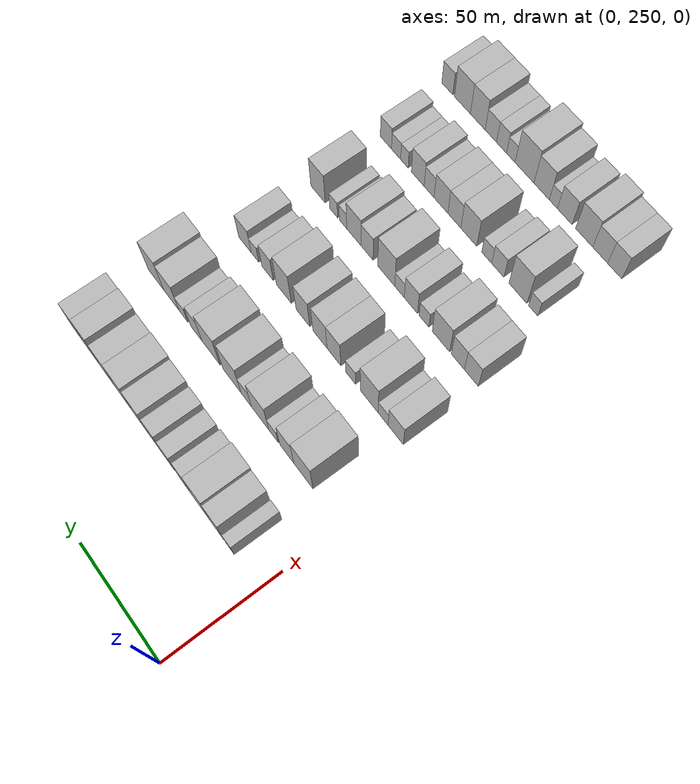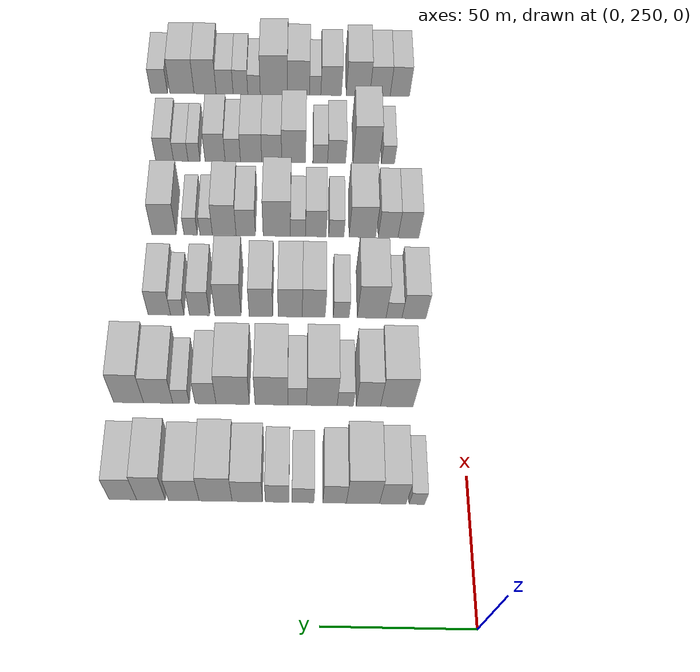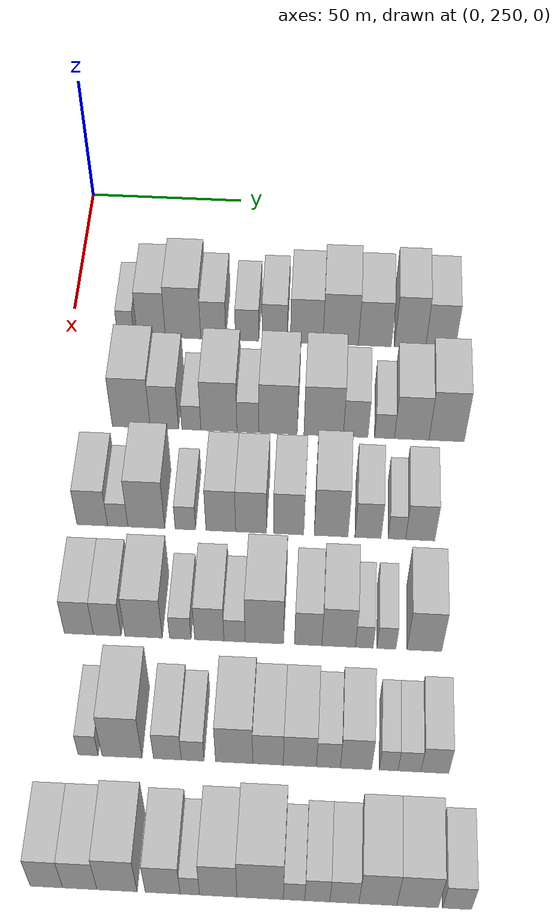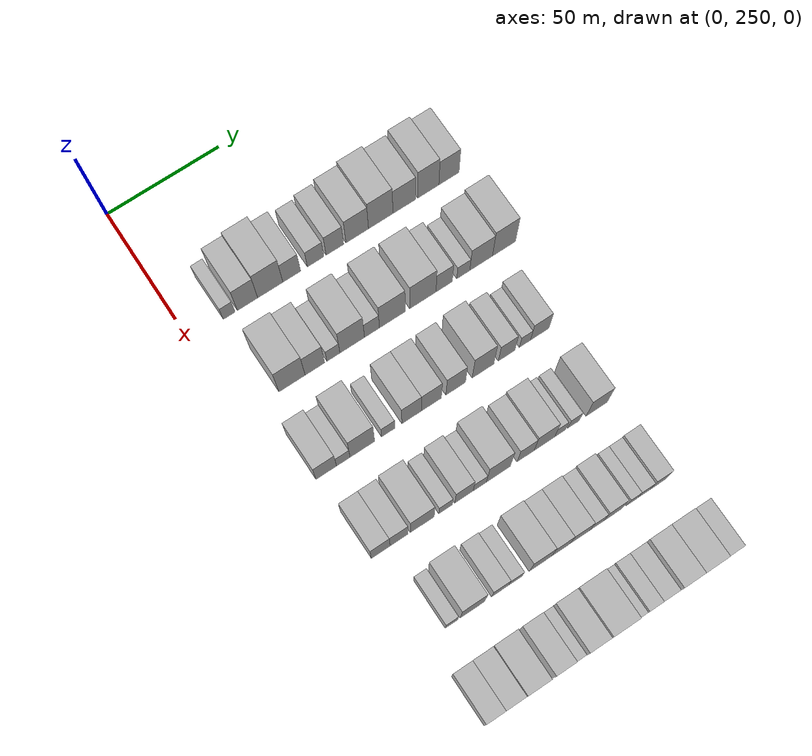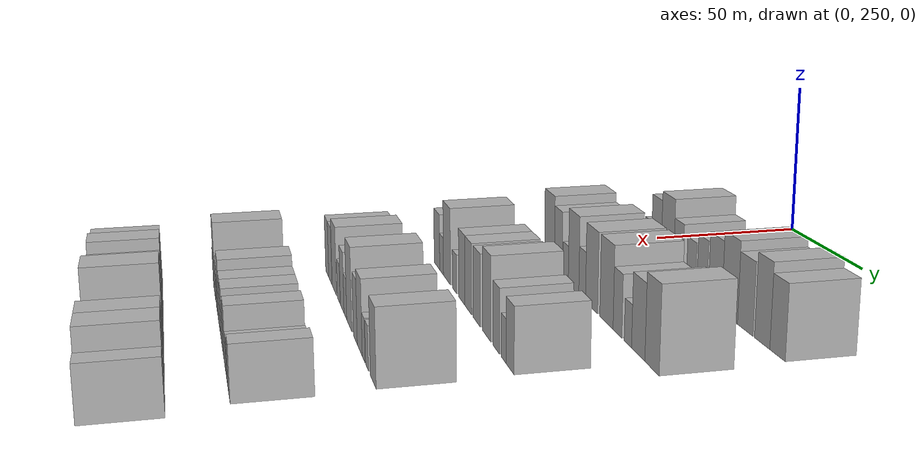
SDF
<sdf version="1.6">
 <world name="default">
  <model name="building_85">
   <static>1</static>
   <pose>50.0000 267.3651 0 0.000000 0.000000 0.000000</pose>
   <link name="link">
    <pose>0 0 6.00 0 0 0</pose>
    <collision name="collision"><geometry><box><size>20.0000 5.1874 12.0000</size></box></geometry></collision>
    <visual name="visual">
     <cast_shadows>0</cast_shadows>
     <geometry><box><size>20.0000 5.1874 12.0000</size></box></geometry>
     <material>
      <script>
       <uri>model://HANNAS_wall/materials/scripts</uri>
       <uri>model://HANNAS_wall/materials/textures</uri>
       <name>vrc/HANNAS_wall</name>
      </script>
     </material>
    </visual>
   </link>
  </model>
  <model name="building_86">
   <static>1</static>
   <pose>50.0000 275.4232 0 0.000000 0.000000 0.000000</pose>
   <link name="link">
    <pose>0 0 10.50 0 0 0</pose>
    <collision name="collision"><geometry><box><size>20.0000 8.9287 21.0000</size></box></geometry></collision>
    <visual name="visual">
     <cast_shadows>0</cast_shadows>
     <geometry><box><size>20.0000 8.9287 21.0000</size></box></geometry>
     <material>
      <script>
       <uri>model://HANNAS_wall/materials/scripts</uri>
       <uri>model://HANNAS_wall/materials/textures</uri>
       <name>vrc/HANNAS_wall</name>
      </script>
     </material>
    </visual>
   </link>
  </model>
  <model name="building_87">
   <static>1</static>
   <pose>50.0000 285.4402 0 0.000000 0.000000 0.000000</pose>
   <link name="link">
    <pose>0 0 12.00 0 0 0</pose>
    <collision name="collision"><geometry><box><size>20.0000 11.1054 24.0000</size></box></geometry></collision>
    <visual name="visual">
     <cast_shadows>0</cast_shadows>
     <geometry><box><size>20.0000 11.1054 24.0000</size></box></geometry>
     <material>
      <script>
       <uri>model://HANNAS_wall/materials/scripts</uri>
       <uri>model://HANNAS_wall/materials/textures</uri>
       <name>vrc/HANNAS_wall</name>
      </script>
     </material>
    </visual>
   </link>
  </model>
  <model name="building_88">
   <static>1</static>
   <pose>50.0000 294.9440 0 0.000000 0.000000 0.000000</pose>
   <link name="link">
    <pose>0 0 9.00 0 0 0</pose>
    <collision name="collision"><geometry><box><size>20.0000 7.9021 18.0000</size></box></geometry></collision>
    <visual name="visual">
     <cast_shadows>0</cast_shadows>
     <geometry><box><size>20.0000 7.9021 18.0000</size></box></geometry>
     <material>
      <script>
       <uri>model://HANNAS_wall/materials/scripts</uri>
       <uri>model://HANNAS_wall/materials/textures</uri>
       <name>vrc/HANNAS_wall</name>
      </script>
     </material>
    </visual>
   </link>
  </model>
  <model name="building_89">
   <static>1</static>
   <pose>50.0000 305.5742 0 0.000000 0.000000 0.000000</pose>
   <link name="link">
    <pose>0 0 7.50 0 0 0</pose>
    <collision name="collision"><geometry><box><size>20.0000 7.3584 15.0000</size></box></geometry></collision>
    <visual name="visual">
     <cast_shadows>0</cast_shadows>
     <geometry><box><size>20.0000 7.3584 15.0000</size></box></geometry>
     <material>
      <script>
       <uri>model://HANNAS_wall/materials/scripts</uri>
       <uri>model://HANNAS_wall/materials/textures</uri>
       <name>vrc/HANNAS_wall</name>
      </script>
     </material>
    </visual>
   </link>
  </model>
  <model name="building_90">
   <static>1</static>
   <pose>50.0000 314.1975 0 0.000000 0.000000 0.000000</pose>
   <link name="link">
    <pose>0 0 9.00 0 0 0</pose>
    <collision name="collision"><geometry><box><size>20.0000 7.8882 18.0000</size></box></geometry></collision>
    <visual name="visual">
     <cast_shadows>0</cast_shadows>
     <geometry><box><size>20.0000 7.8882 18.0000</size></box></geometry>
     <material>
      <script>
       <uri>model://HANNAS_wall/materials/scripts</uri>
       <uri>model://HANNAS_wall/materials/textures</uri>
       <name>vrc/HANNAS_wall</name>
      </script>
     </material>
    </visual>
   </link>
  </model>
  <model name="building_91">
   <static>1</static>
   <pose>50.0000 324.2338 0 0.000000 0.000000 0.000000</pose>
   <link name="link">
    <pose>0 0 10.50 0 0 0</pose>
    <collision name="collision"><geometry><box><size>20.0000 10.1844 21.0000</size></box></geometry></collision>
    <visual name="visual">
     <cast_shadows>0</cast_shadows>
     <geometry><box><size>20.0000 10.1844 21.0000</size></box></geometry>
     <material>
      <script>
       <uri>model://HANNAS_wall/materials/scripts</uri>
       <uri>model://HANNAS_wall/materials/textures</uri>
       <name>vrc/HANNAS_wall</name>
      </script>
     </material>
    </visual>
   </link>
  </model>
  <model name="building_92">
   <static>1</static>
   <pose>50.0000 334.8669 0 0.000000 0.000000 0.000000</pose>
   <link name="link">
    <pose>0 0 12.00 0 0 0</pose>
    <collision name="collision"><geometry><box><size>20.0000 11.0817 24.0000</size></box></geometry></collision>
    <visual name="visual">
     <cast_shadows>0</cast_shadows>
     <geometry><box><size>20.0000 11.0817 24.0000</size></box></geometry>
     <material>
      <script>
       <uri>model://HANNAS_wall/materials/scripts</uri>
       <uri>model://HANNAS_wall/materials/textures</uri>
       <name>vrc/HANNAS_wall</name>
      </script>
     </material>
    </visual>
   </link>
  </model>
  <model name="building_93">
   <static>1</static>
   <pose>50.0000 345.5616 0 0.000000 0.000000 0.000000</pose>
   <link name="link">
    <pose>0 0 10.50 0 0 0</pose>
    <collision name="collision"><geometry><box><size>20.0000 10.3077 21.0000</size></box></geometry></collision>
    <visual name="visual">
     <cast_shadows>0</cast_shadows>
     <geometry><box><size>20.0000 10.3077 21.0000</size></box></geometry>
     <material>
      <script>
       <uri>model://HANNAS_wall/materials/scripts</uri>
       <uri>model://HANNAS_wall/materials/textures</uri>
       <name>vrc/HANNAS_wall</name>
      </script>
     </material>
    </visual>
   </link>
  </model>
  <model name="building_94">
   <static>1</static>
   <pose>50.0000 356.5582 0 0.000000 0.000000 0.000000</pose>
   <link name="link">
    <pose>0 0 12.00 0 0 0</pose>
    <collision name="collision"><geometry><box><size>20.0000 9.6854 24.0000</size></box></geometry></collision>
    <visual name="visual">
     <cast_shadows>0</cast_shadows>
     <geometry><box><size>20.0000 9.6854 24.0000</size></box></geometry>
     <material>
      <script>
       <uri>model://HANNAS_wall/materials/scripts</uri>
       <uri>model://HANNAS_wall/materials/textures</uri>
       <name>vrc/HANNAS_wall</name>
      </script>
     </material>
    </visual>
   </link>
  </model>
  <model name="building_95">
   <static>1</static>
   <pose>50.0000 366.0386 0 0.000000 0.000000 0.000000</pose>
   <link name="link">
    <pose>0 0 10.50 0 0 0</pose>
    <collision name="collision"><geometry><box><size>20.0000 9.2755 21.0000</size></box></geometry></collision>
    <visual name="visual">
     <cast_shadows>0</cast_shadows>
     <geometry><box><size>20.0000 9.2755 21.0000</size></box></geometry>
     <material>
      <script>
       <uri>model://HANNAS_wall/materials/scripts</uri>
       <uri>model://HANNAS_wall/materials/textures</uri>
       <name>vrc/HANNAS_wall</name>
      </script>
     </material>
    </visual>
   </link>
  </model>
  <model name="building_214">
   <static>1</static>
   <pose>85.0000 272.7797 0 0.000000 0.000000 0.000000</pose>
   <link name="link">
    <pose>0 0 12.00 0 0 0</pose>
    <collision name="collision"><geometry><box><size>20.0000 11.4263 24.0000</size></box></geometry></collision>
    <visual name="visual">
     <cast_shadows>0</cast_shadows>
     <geometry><box><size>20.0000 11.4263 24.0000</size></box></geometry>
     <material>
      <script>
       <uri>model://HANNAS_wall/materials/scripts</uri>
       <uri>model://HANNAS_wall/materials/textures</uri>
       <name>vrc/HANNAS_wall</name>
      </script>
     </material>
    </visual>
   </link>
  </model>
  <model name="building_215">
   <static>1</static>
   <pose>85.0000 282.7655 0 0.000000 0.000000 0.000000</pose>
   <link name="link">
    <pose>0 0 10.50 0 0 0</pose>
    <collision name="collision"><geometry><box><size>20.0000 8.5454 21.0000</size></box></geometry></collision>
    <visual name="visual">
     <cast_shadows>0</cast_shadows>
     <geometry><box><size>20.0000 8.5454 21.0000</size></box></geometry>
     <material>
      <script>
       <uri>model://HANNAS_wall/materials/scripts</uri>
       <uri>model://HANNAS_wall/materials/textures</uri>
       <name>vrc/HANNAS_wall</name>
      </script>
     </material>
    </visual>
   </link>
  </model>
  <model name="building_216">
   <static>1</static>
   <pose>85.0000 290.9057 0 0.000000 0.000000 0.000000</pose>
   <link name="link">
    <pose>0 0 6.00 0 0 0</pose>
    <collision name="collision"><geometry><box><size>20.0000 5.7350 12.0000</size></box></geometry></collision>
    <visual name="visual">
     <cast_shadows>0</cast_shadows>
     <geometry><box><size>20.0000 5.7350 12.0000</size></box></geometry>
     <material>
      <script>
       <uri>model://HANNAS_wall/materials/scripts</uri>
       <uri>model://HANNAS_wall/materials/textures</uri>
       <name>vrc/HANNAS_wall</name>
      </script>
     </material>
    </visual>
   </link>
  </model>
  <model name="building_217">
   <static>1</static>
   <pose>85.0000 299.1923 0 0.000000 0.000000 0.000000</pose>
   <link name="link">
    <pose>0 0 12.00 0 0 0</pose>
    <collision name="collision"><geometry><box><size>20.0000 10.8382 24.0000</size></box></geometry></collision>
    <visual name="visual">
     <cast_shadows>0</cast_shadows>
     <geometry><box><size>20.0000 10.8382 24.0000</size></box></geometry>
     <material>
      <script>
       <uri>model://HANNAS_wall/materials/scripts</uri>
       <uri>model://HANNAS_wall/materials/textures</uri>
       <name>vrc/HANNAS_wall</name>
      </script>
     </material>
    </visual>
   </link>
  </model>
  <model name="building_218">
   <static>1</static>
   <pose>85.0000 307.9244 0 0.000000 0.000000 0.000000</pose>
   <link name="link">
    <pose>0 0 7.50 0 0 0</pose>
    <collision name="collision"><geometry><box><size>20.0000 6.6259 15.0000</size></box></geometry></collision>
    <visual name="visual">
     <cast_shadows>0</cast_shadows>
     <geometry><box><size>20.0000 6.6259 15.0000</size></box></geometry>
     <material>
      <script>
       <uri>model://HANNAS_wall/materials/scripts</uri>
       <uri>model://HANNAS_wall/materials/textures</uri>
       <name>vrc/HANNAS_wall</name>
      </script>
     </material>
    </visual>
   </link>
  </model>
  <model name="building_219">
   <static>1</static>
   <pose>85.0000 316.9781 0 0.000000 0.000000 0.000000</pose>
   <link name="link">
    <pose>0 0 12.00 0 0 0</pose>
    <collision name="collision"><geometry><box><size>20.0000 11.4815 24.0000</size></box></geometry></collision>
    <visual name="visual">
     <cast_shadows>0</cast_shadows>
     <geometry><box><size>20.0000 11.4815 24.0000</size></box></geometry>
     <material>
      <script>
       <uri>model://HANNAS_wall/materials/scripts</uri>
       <uri>model://HANNAS_wall/materials/textures</uri>
       <name>vrc/HANNAS_wall</name>
      </script>
     </material>
    </visual>
   </link>
  </model>
  <model name="building_220">
   <static>1</static>
   <pose>85.0000 330.6158 0 0.000000 0.000000 0.000000</pose>
   <link name="link">
    <pose>0 0 12.00 0 0 0</pose>
    <collision name="collision"><geometry><box><size>20.0000 11.7939 24.0000</size></box></geometry></collision>
    <visual name="visual">
     <cast_shadows>0</cast_shadows>
     <geometry><box><size>20.0000 11.7939 24.0000</size></box></geometry>
     <material>
      <script>
       <uri>model://HANNAS_wall/materials/scripts</uri>
       <uri>model://HANNAS_wall/materials/textures</uri>
       <name>vrc/HANNAS_wall</name>
      </script>
     </material>
    </visual>
   </link>
  </model>
  <model name="building_221">
   <static>1</static>
   <pose>85.0000 340.2040 0 0.000000 0.000000 0.000000</pose>
   <link name="link">
    <pose>0 0 9.00 0 0 0</pose>
    <collision name="collision"><geometry><box><size>20.0000 7.3823 18.0000</size></box></geometry></collision>
    <visual name="visual">
     <cast_shadows>0</cast_shadows>
     <geometry><box><size>20.0000 7.3823 18.0000</size></box></geometry>
     <material>
      <script>
       <uri>model://HANNAS_wall/materials/scripts</uri>
       <uri>model://HANNAS_wall/materials/textures</uri>
       <name>vrc/HANNAS_wall</name>
      </script>
     </material>
    </visual>
   </link>
  </model>
  <model name="building_222">
   <static>1</static>
   <pose>85.0000 348.8514 0 0.000000 0.000000 0.000000</pose>
   <link name="link">
    <pose>0 0 6.00 0 0 0</pose>
    <collision name="collision"><geometry><box><size>20.0000 5.9125 12.0000</size></box></geometry></collision>
    <visual name="visual">
     <cast_shadows>0</cast_shadows>
     <geometry><box><size>20.0000 5.9125 12.0000</size></box></geometry>
     <material>
      <script>
       <uri>model://HANNAS_wall/materials/scripts</uri>
       <uri>model://HANNAS_wall/materials/textures</uri>
       <name>vrc/HANNAS_wall</name>
      </script>
     </material>
    </visual>
   </link>
  </model>
  <model name="building_223">
   <static>1</static>
   <pose>85.0000 356.9753 0 0.000000 0.000000 0.000000</pose>
   <link name="link">
    <pose>0 0 10.50 0 0 0</pose>
    <collision name="collision"><geometry><box><size>20.0000 10.3353 21.0000</size></box></geometry></collision>
    <visual name="visual">
     <cast_shadows>0</cast_shadows>
     <geometry><box><size>20.0000 10.3353 21.0000</size></box></geometry>
     <material>
      <script>
       <uri>model://HANNAS_wall/materials/scripts</uri>
       <uri>model://HANNAS_wall/materials/textures</uri>
       <name>vrc/HANNAS_wall</name>
      </script>
     </material>
    </visual>
   </link>
  </model>
  <model name="building_224">
   <static>1</static>
   <pose>85.0000 367.4034 0 0.000000 0.000000 0.000000</pose>
   <link name="link">
    <pose>0 0 12.00 0 0 0</pose>
    <collision name="collision"><geometry><box><size>20.0000 10.5210 24.0000</size></box></geometry></collision>
    <visual name="visual">
     <cast_shadows>0</cast_shadows>
     <geometry><box><size>20.0000 10.5210 24.0000</size></box></geometry>
     <material>
      <script>
       <uri>model://HANNAS_wall/materials/scripts</uri>
       <uri>model://HANNAS_wall/materials/textures</uri>
       <name>vrc/HANNAS_wall</name>
      </script>
     </material>
    </visual>
   </link>
  </model>
  <model name="building_344">
   <static>1</static>
   <pose>120.0000 265.1553 0 0.000000 0.000000 0.000000</pose>
   <link name="link">
    <pose>0 0 9.00 0 0 0</pose>
    <collision name="collision"><geometry><box><size>20.0000 8.8546 18.0000</size></box></geometry></collision>
    <visual name="visual">
     <cast_shadows>0</cast_shadows>
     <geometry><box><size>20.0000 8.8546 18.0000</size></box></geometry>
     <material>
      <script>
       <uri>model://HANNAS_wall/materials/scripts</uri>
       <uri>model://HANNAS_wall/materials/textures</uri>
       <name>vrc/HANNAS_wall</name>
      </script>
     </material>
    </visual>
   </link>
  </model>
  <model name="building_345">
   <static>1</static>
   <pose>120.0000 272.5196 0 0.000000 0.000000 0.000000</pose>
   <link name="link">
    <pose>0 0 6.00 0 0 0</pose>
    <collision name="collision"><geometry><box><size>20.0000 5.8739 12.0000</size></box></geometry></collision>
    <visual name="visual">
     <cast_shadows>0</cast_shadows>
     <geometry><box><size>20.0000 5.8739 12.0000</size></box></geometry>
     <material>
      <script>
       <uri>model://HANNAS_wall/materials/scripts</uri>
       <uri>model://HANNAS_wall/materials/textures</uri>
       <name>vrc/HANNAS_wall</name>
      </script>
     </material>
    </visual>
   </link>
  </model>
  <model name="building_346">
   <static>1</static>
   <pose>120.0000 280.7704 0 0.000000 0.000000 0.000000</pose>
   <link name="link">
    <pose>0 0 12.00 0 0 0</pose>
    <collision name="collision"><geometry><box><size>20.0000 10.6278 24.0000</size></box></geometry></collision>
    <visual name="visual">
     <cast_shadows>0</cast_shadows>
     <geometry><box><size>20.0000 10.6278 24.0000</size></box></geometry>
     <material>
      <script>
       <uri>model://HANNAS_wall/materials/scripts</uri>
       <uri>model://HANNAS_wall/materials/textures</uri>
       <name>vrc/HANNAS_wall</name>
      </script>
     </material>
    </visual>
   </link>
  </model>
  <model name="building_347">
   <static>1</static>
   <pose>120.0000 292.0162 0 0.000000 0.000000 0.000000</pose>
   <link name="link">
    <pose>0 0 6.00 0 0 0</pose>
    <collision name="collision"><geometry><box><size>20.0000 5.8637 12.0000</size></box></geometry></collision>
    <visual name="visual">
     <cast_shadows>0</cast_shadows>
     <geometry><box><size>20.0000 5.8637 12.0000</size></box></geometry>
     <material>
      <script>
       <uri>model://HANNAS_wall/materials/scripts</uri>
       <uri>model://HANNAS_wall/materials/textures</uri>
       <name>vrc/HANNAS_wall</name>
      </script>
     </material>
    </visual>
   </link>
  </model>
  <model name="building_348">
   <static>1</static>
   <pose>120.0000 302.2146 0 0.000000 0.000000 0.000000</pose>
   <link name="link">
    <pose>0 0 10.50 0 0 0</pose>
    <collision name="collision"><geometry><box><size>20.0000 8.5331 21.0000</size></box></geometry></collision>
    <visual name="visual">
     <cast_shadows>0</cast_shadows>
     <geometry><box><size>20.0000 8.5331 21.0000</size></box></geometry>
     <material>
      <script>
       <uri>model://HANNAS_wall/materials/scripts</uri>
       <uri>model://HANNAS_wall/materials/textures</uri>
       <name>vrc/HANNAS_wall</name>
      </script>
     </material>
    </visual>
   </link>
  </model>
  <model name="building_349">
   <static>1</static>
   <pose>120.0000 310.8979 0 0.000000 0.000000 0.000000</pose>
   <link name="link">
    <pose>0 0 10.50 0 0 0</pose>
    <collision name="collision"><geometry><box><size>20.0000 8.8336 21.0000</size></box></geometry></collision>
    <visual name="visual">
     <cast_shadows>0</cast_shadows>
     <geometry><box><size>20.0000 8.8336 21.0000</size></box></geometry>
     <material>
      <script>
       <uri>model://HANNAS_wall/materials/scripts</uri>
       <uri>model://HANNAS_wall/materials/textures</uri>
       <name>vrc/HANNAS_wall</name>
      </script>
     </material>
    </visual>
   </link>
  </model>
  <model name="building_350">
   <static>1</static>
   <pose>120.0000 321.6597 0 0.000000 0.000000 0.000000</pose>
   <link name="link">
    <pose>0 0 10.50 0 0 0</pose>
    <collision name="collision"><geometry><box><size>20.0000 8.6899 21.0000</size></box></geometry></collision>
    <visual name="visual">
     <cast_shadows>0</cast_shadows>
     <geometry><box><size>20.0000 8.6899 21.0000</size></box></geometry>
     <material>
      <script>
       <uri>model://HANNAS_wall/materials/scripts</uri>
       <uri>model://HANNAS_wall/materials/textures</uri>
       <name>vrc/HANNAS_wall</name>
      </script>
     </material>
    </visual>
   </link>
  </model>
  <model name="building_351">
   <static>1</static>
   <pose>120.0000 333.8336 0 0.000000 0.000000 0.000000</pose>
   <link name="link">
    <pose>0 0 12.00 0 0 0</pose>
    <collision name="collision"><geometry><box><size>20.0000 9.6581 24.0000</size></box></geometry></collision>
    <visual name="visual">
     <cast_shadows>0</cast_shadows>
     <geometry><box><size>20.0000 9.6581 24.0000</size></box></geometry>
     <material>
      <script>
       <uri>model://HANNAS_wall/materials/scripts</uri>
       <uri>model://HANNAS_wall/materials/textures</uri>
       <name>vrc/HANNAS_wall</name>
      </script>
     </material>
    </visual>
   </link>
  </model>
  <model name="building_352">
   <static>1</static>
   <pose>120.0000 344.3937 0 0.000000 0.000000 0.000000</pose>
   <link name="link">
    <pose>0 0 9.00 0 0 0</pose>
    <collision name="collision"><geometry><box><size>20.0000 7.4620 18.0000</size></box></geometry></collision>
    <visual name="visual">
     <cast_shadows>0</cast_shadows>
     <geometry><box><size>20.0000 7.4620 18.0000</size></box></geometry>
     <material>
      <script>
       <uri>model://HANNAS_wall/materials/scripts</uri>
       <uri>model://HANNAS_wall/materials/textures</uri>
       <name>vrc/HANNAS_wall</name>
      </script>
     </material>
    </visual>
   </link>
  </model>
  <model name="building_353">
   <static>1</static>
   <pose>120.0000 352.6313 0 0.000000 0.000000 0.000000</pose>
   <link name="link">
    <pose>0 0 6.00 0 0 0</pose>
    <collision name="collision"><geometry><box><size>20.0000 5.0134 12.0000</size></box></geometry></collision>
    <visual name="visual">
     <cast_shadows>0</cast_shadows>
     <geometry><box><size>20.0000 5.0134 12.0000</size></box></geometry>
     <material>
      <script>
       <uri>model://HANNAS_wall/materials/scripts</uri>
       <uri>model://HANNAS_wall/materials/textures</uri>
       <name>vrc/HANNAS_wall</name>
      </script>
     </material>
    </visual>
   </link>
  </model>
  <model name="building_354">
   <static>1</static>
   <pose>120.0000 359.2974 0 0.000000 0.000000 0.000000</pose>
   <link name="link">
    <pose>0 0 9.00 0 0 0</pose>
    <collision name="collision"><geometry><box><size>20.0000 8.3188 18.0000</size></box></geometry></collision>
    <visual name="visual">
     <cast_shadows>0</cast_shadows>
     <geometry><box><size>20.0000 8.3188 18.0000</size></box></geometry>
     <material>
      <script>
       <uri>model://HANNAS_wall/materials/scripts</uri>
       <uri>model://HANNAS_wall/materials/textures</uri>
       <name>vrc/HANNAS_wall</name>
      </script>
     </material>
    </visual>
   </link>
  </model>
  <model name="building_475">
   <static>1</static>
   <pose>155.0000 265.6820 0 0.000000 0.000000 0.000000</pose>
   <link name="link">
    <pose>0 0 9.00 0 0 0</pose>
    <collision name="collision"><geometry><box><size>20.0000 8.0343 18.0000</size></box></geometry></collision>
    <visual name="visual">
     <cast_shadows>0</cast_shadows>
     <geometry><box><size>20.0000 8.0343 18.0000</size></box></geometry>
     <material>
      <script>
       <uri>model://HANNAS_wall/materials/scripts</uri>
       <uri>model://HANNAS_wall/materials/textures</uri>
       <name>vrc/HANNAS_wall</name>
      </script>
     </material>
    </visual>
   </link>
  </model>
  <model name="building_476">
   <static>1</static>
   <pose>155.0000 273.5184 0 0.000000 0.000000 0.000000</pose>
   <link name="link">
    <pose>0 0 9.00 0 0 0</pose>
    <collision name="collision"><geometry><box><size>20.0000 7.6386 18.0000</size></box></geometry></collision>
    <visual name="visual">
     <cast_shadows>0</cast_shadows>
     <geometry><box><size>20.0000 7.6386 18.0000</size></box></geometry>
     <material>
      <script>
       <uri>model://HANNAS_wall/materials/scripts</uri>
       <uri>model://HANNAS_wall/materials/textures</uri>
       <name>vrc/HANNAS_wall</name>
      </script>
     </material>
    </visual>
   </link>
  </model>
  <model name="building_477">
   <static>1</static>
   <pose>155.0000 283.4774 0 0.000000 0.000000 0.000000</pose>
   <link name="link">
    <pose>0 0 10.50 0 0 0</pose>
    <collision name="collision"><geometry><box><size>20.0000 10.2794 21.0000</size></box></geometry></collision>
    <visual name="visual">
     <cast_shadows>0</cast_shadows>
     <geometry><box><size>20.0000 10.2794 21.0000</size></box></geometry>
     <material>
      <script>
       <uri>model://HANNAS_wall/materials/scripts</uri>
       <uri>model://HANNAS_wall/materials/textures</uri>
       <name>vrc/HANNAS_wall</name>
      </script>
     </material>
    </visual>
   </link>
  </model>
  <model name="building_478">
   <static>1</static>
   <pose>155.0000 293.5607 0 0.000000 0.000000 0.000000</pose>
   <link name="link">
    <pose>0 0 6.00 0 0 0</pose>
    <collision name="collision"><geometry><box><size>20.0000 5.8872 12.0000</size></box></geometry></collision>
    <visual name="visual">
     <cast_shadows>0</cast_shadows>
     <geometry><box><size>20.0000 5.8872 12.0000</size></box></geometry>
     <material>
      <script>
       <uri>model://HANNAS_wall/materials/scripts</uri>
       <uri>model://HANNAS_wall/materials/textures</uri>
       <name>vrc/HANNAS_wall</name>
      </script>
     </material>
    </visual>
   </link>
  </model>
  <model name="building_479">
   <static>1</static>
   <pose>155.0000 301.5059 0 0.000000 0.000000 0.000000</pose>
   <link name="link">
    <pose>0 0 9.00 0 0 0</pose>
    <collision name="collision"><geometry><box><size>20.0000 8.0030 18.0000</size></box></geometry></collision>
    <visual name="visual">
     <cast_shadows>0</cast_shadows>
     <geometry><box><size>20.0000 8.0030 18.0000</size></box></geometry>
     <material>
      <script>
       <uri>model://HANNAS_wall/materials/scripts</uri>
       <uri>model://HANNAS_wall/materials/textures</uri>
       <name>vrc/HANNAS_wall</name>
      </script>
     </material>
    </visual>
   </link>
  </model>
  <model name="building_480">
   <static>1</static>
   <pose>155.0000 308.4057 0 0.000000 0.000000 0.000000</pose>
   <link name="link">
    <pose>0 0 6.00 0 0 0</pose>
    <collision name="collision"><geometry><box><size>20.0000 5.7966 12.0000</size></box></geometry></collision>
    <visual name="visual">
     <cast_shadows>0</cast_shadows>
     <geometry><box><size>20.0000 5.7966 12.0000</size></box></geometry>
     <material>
      <script>
       <uri>model://HANNAS_wall/materials/scripts</uri>
       <uri>model://HANNAS_wall/materials/textures</uri>
       <name>vrc/HANNAS_wall</name>
      </script>
     </material>
    </visual>
   </link>
  </model>
  <model name="building_481">
   <static>1</static>
   <pose>155.0000 316.5645 0 0.000000 0.000000 0.000000</pose>
   <link name="link">
    <pose>0 0 12.00 0 0 0</pose>
    <collision name="collision"><geometry><box><size>20.0000 10.5208 24.0000</size></box></geometry></collision>
    <visual name="visual">
     <cast_shadows>0</cast_shadows>
     <geometry><box><size>20.0000 10.5208 24.0000</size></box></geometry>
     <material>
      <script>
       <uri>model://HANNAS_wall/materials/scripts</uri>
       <uri>model://HANNAS_wall/materials/textures</uri>
       <name>vrc/HANNAS_wall</name>
      </script>
     </material>
    </visual>
   </link>
  </model>
  <model name="building_482">
   <static>1</static>
   <pose>155.0000 328.5617 0 0.000000 0.000000 0.000000</pose>
   <link name="link">
    <pose>0 0 9.00 0 0 0</pose>
    <collision name="collision"><geometry><box><size>20.0000 7.4736 18.0000</size></box></geometry></collision>
    <visual name="visual">
     <cast_shadows>0</cast_shadows>
     <geometry><box><size>20.0000 7.4736 18.0000</size></box></geometry>
     <material>
      <script>
       <uri>model://HANNAS_wall/materials/scripts</uri>
       <uri>model://HANNAS_wall/materials/textures</uri>
       <name>vrc/HANNAS_wall</name>
      </script>
     </material>
    </visual>
   </link>
  </model>
  <model name="building_483">
   <static>1</static>
   <pose>155.0000 336.8799 0 0.000000 0.000000 0.000000</pose>
   <link name="link">
    <pose>0 0 10.50 0 0 0</pose>
    <collision name="collision"><geometry><box><size>20.0000 9.1629 21.0000</size></box></geometry></collision>
    <visual name="visual">
     <cast_shadows>0</cast_shadows>
     <geometry><box><size>20.0000 9.1629 21.0000</size></box></geometry>
     <material>
      <script>
       <uri>model://HANNAS_wall/materials/scripts</uri>
       <uri>model://HANNAS_wall/materials/textures</uri>
       <name>vrc/HANNAS_wall</name>
      </script>
     </material>
    </visual>
   </link>
  </model>
  <model name="building_484">
   <static>1</static>
   <pose>155.0000 343.8743 0 0.000000 0.000000 0.000000</pose>
   <link name="link">
    <pose>0 0 6.00 0 0 0</pose>
    <collision name="collision"><geometry><box><size>20.0000 4.8258 12.0000</size></box></geometry></collision>
    <visual name="visual">
     <cast_shadows>0</cast_shadows>
     <geometry><box><size>20.0000 4.8258 12.0000</size></box></geometry>
     <material>
      <script>
       <uri>model://HANNAS_wall/materials/scripts</uri>
       <uri>model://HANNAS_wall/materials/textures</uri>
       <name>vrc/HANNAS_wall</name>
      </script>
     </material>
    </visual>
   </link>
  </model>
  <model name="building_485">
   <static>1</static>
   <pose>155.0000 349.8829 0 0.000000 0.000000 0.000000</pose>
   <link name="link">
    <pose>0 0 6.00 0 0 0</pose>
    <collision name="collision"><geometry><box><size>20.0000 5.1915 12.0000</size></box></geometry></collision>
    <visual name="visual">
     <cast_shadows>0</cast_shadows>
     <geometry><box><size>20.0000 5.1915 12.0000</size></box></geometry>
     <material>
      <script>
       <uri>model://HANNAS_wall/materials/scripts</uri>
       <uri>model://HANNAS_wall/materials/textures</uri>
       <name>vrc/HANNAS_wall</name>
      </script>
     </material>
    </visual>
   </link>
  </model>
  <model name="building_486">
   <static>1</static>
   <pose>155.0000 360.2124 0 0.000000 0.000000 0.000000</pose>
   <link name="link">
    <pose>0 0 10.50 0 0 0</pose>
    <collision name="collision"><geometry><box><size>20.0000 9.4674 21.0000</size></box></geometry></collision>
    <visual name="visual">
     <cast_shadows>0</cast_shadows>
     <geometry><box><size>20.0000 9.4674 21.0000</size></box></geometry>
     <material>
      <script>
       <uri>model://HANNAS_wall/materials/scripts</uri>
       <uri>model://HANNAS_wall/materials/textures</uri>
       <name>vrc/HANNAS_wall</name>
      </script>
     </material>
    </visual>
   </link>
  </model>
  <model name="building_605">
   <static>1</static>
   <pose>190.0000 272.4419 0 0.000000 0.000000 0.000000</pose>
   <link name="link">
    <pose>0 0 6.00 0 0 0</pose>
    <collision name="collision"><geometry><box><size>20.0000 5.2661 12.0000</size></box></geometry></collision>
    <visual name="visual">
     <cast_shadows>0</cast_shadows>
     <geometry><box><size>20.0000 5.2661 12.0000</size></box></geometry>
     <material>
      <script>
       <uri>model://HANNAS_wall/materials/scripts</uri>
       <uri>model://HANNAS_wall/materials/textures</uri>
       <name>vrc/HANNAS_wall</name>
      </script>
     </material>
    </visual>
   </link>
  </model>
  <model name="building_606">
   <static>1</static>
   <pose>190.0000 281.3155 0 0.000000 0.000000 0.000000</pose>
   <link name="link">
    <pose>0 0 12.00 0 0 0</pose>
    <collision name="collision"><geometry><box><size>20.0000 10.4811 24.0000</size></box></geometry></collision>
    <visual name="visual">
     <cast_shadows>0</cast_shadows>
     <geometry><box><size>20.0000 10.4811 24.0000</size></box></geometry>
     <material>
      <script>
       <uri>model://HANNAS_wall/materials/scripts</uri>
       <uri>model://HANNAS_wall/materials/textures</uri>
       <name>vrc/HANNAS_wall</name>
      </script>
     </material>
    </visual>
   </link>
  </model>
  <model name="building_607">
   <static>1</static>
   <pose>190.0000 293.1852 0 0.000000 0.000000 0.000000</pose>
   <link name="link">
    <pose>0 0 7.50 0 0 0</pose>
    <collision name="collision"><geometry><box><size>20.0000 7.2582 15.0000</size></box></geometry></collision>
    <visual name="visual">
     <cast_shadows>0</cast_shadows>
     <geometry><box><size>20.0000 7.2582 15.0000</size></box></geometry>
     <material>
      <script>
       <uri>model://HANNAS_wall/materials/scripts</uri>
       <uri>model://HANNAS_wall/materials/textures</uri>
       <name>vrc/HANNAS_wall</name>
      </script>
     </material>
    </visual>
   </link>
  </model>
  <model name="building_608">
   <static>1</static>
   <pose>190.0000 299.7828 0 0.000000 0.000000 0.000000</pose>
   <link name="link">
    <pose>0 0 6.00 0 0 0</pose>
    <collision name="collision"><geometry><box><size>20.0000 5.9371 12.0000</size></box></geometry></collision>
    <visual name="visual">
     <cast_shadows>0</cast_shadows>
     <geometry><box><size>20.0000 5.9371 12.0000</size></box></geometry>
     <material>
      <script>
       <uri>model://HANNAS_wall/materials/scripts</uri>
       <uri>model://HANNAS_wall/materials/textures</uri>
       <name>vrc/HANNAS_wall</name>
      </script>
     </material>
    </visual>
   </link>
  </model>
  <model name="building_609">
   <static>1</static>
   <pose>190.0000 310.5757 0 0.000000 0.000000 0.000000</pose>
   <link name="link">
    <pose>0 0 10.50 0 0 0</pose>
    <collision name="collision"><geometry><box><size>20.0000 9.6487 21.0000</size></box></geometry></collision>
    <visual name="visual">
     <cast_shadows>0</cast_shadows>
     <geometry><box><size>20.0000 9.6487 21.0000</size></box></geometry>
     <material>
      <script>
       <uri>model://HANNAS_wall/materials/scripts</uri>
       <uri>model://HANNAS_wall/materials/textures</uri>
       <name>vrc/HANNAS_wall</name>
      </script>
     </material>
    </visual>
   </link>
  </model>
  <model name="building_610">
   <static>1</static>
   <pose>190.0000 319.3906 0 0.000000 0.000000 0.000000</pose>
   <link name="link">
    <pose>0 0 9.00 0 0 0</pose>
    <collision name="collision"><geometry><box><size>20.0000 7.9810 18.0000</size></box></geometry></collision>
    <visual name="visual">
     <cast_shadows>0</cast_shadows>
     <geometry><box><size>20.0000 7.9810 18.0000</size></box></geometry>
     <material>
      <script>
       <uri>model://HANNAS_wall/materials/scripts</uri>
       <uri>model://HANNAS_wall/materials/textures</uri>
       <name>vrc/HANNAS_wall</name>
      </script>
     </material>
    </visual>
   </link>
  </model>
  <model name="building_611">
   <static>1</static>
   <pose>190.0000 327.6766 0 0.000000 0.000000 0.000000</pose>
   <link name="link">
    <pose>0 0 9.00 0 0 0</pose>
    <collision name="collision"><geometry><box><size>20.0000 8.5909 18.0000</size></box></geometry></collision>
    <visual name="visual">
     <cast_shadows>0</cast_shadows>
     <geometry><box><size>20.0000 8.5909 18.0000</size></box></geometry>
     <material>
      <script>
       <uri>model://HANNAS_wall/materials/scripts</uri>
       <uri>model://HANNAS_wall/materials/textures</uri>
       <name>vrc/HANNAS_wall</name>
      </script>
     </material>
    </visual>
   </link>
  </model>
  <model name="building_612">
   <static>1</static>
   <pose>190.0000 335.0703 0 0.000000 0.000000 0.000000</pose>
   <link name="link">
    <pose>0 0 7.50 0 0 0</pose>
    <collision name="collision"><geometry><box><size>20.0000 6.1966 15.0000</size></box></geometry></collision>
    <visual name="visual">
     <cast_shadows>0</cast_shadows>
     <geometry><box><size>20.0000 6.1966 15.0000</size></box></geometry>
     <material>
      <script>
       <uri>model://HANNAS_wall/materials/scripts</uri>
       <uri>model://HANNAS_wall/materials/textures</uri>
       <name>vrc/HANNAS_wall</name>
      </script>
     </material>
    </visual>
   </link>
  </model>
  <model name="building_613">
   <static>1</static>
   <pose>190.0000 342.2267 0 0.000000 0.000000 0.000000</pose>
   <link name="link">
    <pose>0 0 9.00 0 0 0</pose>
    <collision name="collision"><geometry><box><size>20.0000 8.1161 18.0000</size></box></geometry></collision>
    <visual name="visual">
     <cast_shadows>0</cast_shadows>
     <geometry><box><size>20.0000 8.1161 18.0000</size></box></geometry>
     <material>
      <script>
       <uri>model://HANNAS_wall/materials/scripts</uri>
       <uri>model://HANNAS_wall/materials/textures</uri>
       <name>vrc/HANNAS_wall</name>
      </script>
     </material>
    </visual>
   </link>
  </model>
  <model name="building_614">
   <static>1</static>
   <pose>190.0000 350.7146 0 0.000000 0.000000 0.000000</pose>
   <link name="link">
    <pose>0 0 6.00 0 0 0</pose>
    <collision name="collision"><geometry><box><size>20.0000 4.8596 12.0000</size></box></geometry></collision>
    <visual name="visual">
     <cast_shadows>0</cast_shadows>
     <geometry><box><size>20.0000 4.8596 12.0000</size></box></geometry>
     <material>
      <script>
       <uri>model://HANNAS_wall/materials/scripts</uri>
       <uri>model://HANNAS_wall/materials/textures</uri>
       <name>vrc/HANNAS_wall</name>
      </script>
     </material>
    </visual>
   </link>
  </model>
  <model name="building_615">
   <static>1</static>
   <pose>190.0000 356.0925 0 0.000000 0.000000 0.000000</pose>
   <link name="link">
    <pose>0 0 6.00 0 0 0</pose>
    <collision name="collision"><geometry><box><size>20.0000 5.8961 12.0000</size></box></geometry></collision>
    <visual name="visual">
     <cast_shadows>0</cast_shadows>
     <geometry><box><size>20.0000 5.8961 12.0000</size></box></geometry>
     <material>
      <script>
       <uri>model://HANNAS_wall/materials/scripts</uri>
       <uri>model://HANNAS_wall/materials/textures</uri>
       <name>vrc/HANNAS_wall</name>
      </script>
     </material>
    </visual>
   </link>
  </model>
  <model name="building_616">
   <static>1</static>
   <pose>190.0000 362.6562 0 0.000000 0.000000 0.000000</pose>
   <link name="link">
    <pose>0 0 7.50 0 0 0</pose>
    <collision name="collision"><geometry><box><size>20.0000 7.2313 15.0000</size></box></geometry></collision>
    <visual name="visual">
     <cast_shadows>0</cast_shadows>
     <geometry><box><size>20.0000 7.2313 15.0000</size></box></geometry>
     <material>
      <script>
       <uri>model://HANNAS_wall/materials/scripts</uri>
       <uri>model://HANNAS_wall/materials/textures</uri>
       <name>vrc/HANNAS_wall</name>
      </script>
     </material>
    </visual>
   </link>
  </model>
  <model name="building_735">
   <static>1</static>
   <pose>225.0000 266.3030 0 0.000000 0.000000 0.000000</pose>
   <link name="link">
    <pose>0 0 9.00 0 0 0</pose>
    <collision name="collision"><geometry><box><size>20.0000 8.0832 18.0000</size></box></geometry></collision>
    <visual name="visual">
     <cast_shadows>0</cast_shadows>
     <geometry><box><size>20.0000 8.0832 18.0000</size></box></geometry>
     <material>
      <script>
       <uri>model://HANNAS_wall/materials/scripts</uri>
       <uri>model://HANNAS_wall/materials/textures</uri>
       <name>vrc/HANNAS_wall</name>
      </script>
     </material>
    </visual>
   </link>
  </model>
  <model name="building_736">
   <static>1</static>
   <pose>225.0000 274.6147 0 0.000000 0.000000 0.000000</pose>
   <link name="link">
    <pose>0 0 9.00 0 0 0</pose>
    <collision name="collision"><geometry><box><size>20.0000 8.5404 18.0000</size></box></geometry></collision>
    <visual name="visual">
     <cast_shadows>0</cast_shadows>
     <geometry><box><size>20.0000 8.5404 18.0000</size></box></geometry>
     <material>
      <script>
       <uri>model://HANNAS_wall/materials/scripts</uri>
       <uri>model://HANNAS_wall/materials/textures</uri>
       <name>vrc/HANNAS_wall</name>
      </script>
     </material>
    </visual>
   </link>
  </model>
  <model name="building_737">
   <static>1</static>
   <pose>225.0000 283.8705 0 0.000000 0.000000 0.000000</pose>
   <link name="link">
    <pose>0 0 10.50 0 0 0</pose>
    <collision name="collision"><geometry><box><size>20.0000 9.9712 21.0000</size></box></geometry></collision>
    <visual name="visual">
     <cast_shadows>0</cast_shadows>
     <geometry><box><size>20.0000 9.9712 21.0000</size></box></geometry>
     <material>
      <script>
       <uri>model://HANNAS_wall/materials/scripts</uri>
       <uri>model://HANNAS_wall/materials/textures</uri>
       <name>vrc/HANNAS_wall</name>
      </script>
     </material>
    </visual>
   </link>
  </model>
  <model name="building_738">
   <static>1</static>
   <pose>225.0000 295.1907 0 0.000000 0.000000 0.000000</pose>
   <link name="link">
    <pose>0 0 9.00 0 0 0</pose>
    <collision name="collision"><geometry><box><size>20.0000 8.6692 18.0000</size></box></geometry></collision>
    <visual name="visual">
     <cast_shadows>0</cast_shadows>
     <geometry><box><size>20.0000 8.6692 18.0000</size></box></geometry>
     <material>
      <script>
       <uri>model://HANNAS_wall/materials/scripts</uri>
       <uri>model://HANNAS_wall/materials/textures</uri>
       <name>vrc/HANNAS_wall</name>
      </script>
     </material>
    </visual>
   </link>
  </model>
  <model name="building_739">
   <static>1</static>
   <pose>225.0000 301.9261 0 0.000000 0.000000 0.000000</pose>
   <link name="link">
    <pose>0 0 6.00 0 0 0</pose>
    <collision name="collision"><geometry><box><size>20.0000 4.8015 12.0000</size></box></geometry></collision>
    <visual name="visual">
     <cast_shadows>0</cast_shadows>
     <geometry><box><size>20.0000 4.8015 12.0000</size></box></geometry>
     <material>
      <script>
       <uri>model://HANNAS_wall/materials/scripts</uri>
       <uri>model://HANNAS_wall/materials/textures</uri>
       <name>vrc/HANNAS_wall</name>
      </script>
     </material>
    </visual>
   </link>
  </model>
  <model name="building_740">
   <static>1</static>
   <pose>225.0000 308.9357 0 0.000000 0.000000 0.000000</pose>
   <link name="link">
    <pose>0 0 10.50 0 0 0</pose>
    <collision name="collision"><geometry><box><size>20.0000 9.2176 21.0000</size></box></geometry></collision>
    <visual name="visual">
     <cast_shadows>0</cast_shadows>
     <geometry><box><size>20.0000 9.2176 21.0000</size></box></geometry>
     <material>
      <script>
       <uri>model://HANNAS_wall/materials/scripts</uri>
       <uri>model://HANNAS_wall/materials/textures</uri>
       <name>vrc/HANNAS_wall</name>
      </script>
     </material>
    </visual>
   </link>
  </model>
  <model name="building_741">
   <static>1</static>
   <pose>225.0000 319.2761 0 0.000000 0.000000 0.000000</pose>
   <link name="link">
    <pose>0 0 12.00 0 0 0</pose>
    <collision name="collision"><geometry><box><size>20.0000 11.4631 24.0000</size></box></geometry></collision>
    <visual name="visual">
     <cast_shadows>0</cast_shadows>
     <geometry><box><size>20.0000 11.4631 24.0000</size></box></geometry>
     <material>
      <script>
       <uri>model://HANNAS_wall/materials/scripts</uri>
       <uri>model://HANNAS_wall/materials/textures</uri>
       <name>vrc/HANNAS_wall</name>
      </script>
     </material>
    </visual>
   </link>
  </model>
  <model name="building_742">
   <static>1</static>
   <pose>225.0000 327.6411 0 0.000000 0.000000 0.000000</pose>
   <link name="link">
    <pose>0 0 6.00 0 0 0</pose>
    <collision name="collision"><geometry><box><size>20.0000 5.2668 12.0000</size></box></geometry></collision>
    <visual name="visual">
     <cast_shadows>0</cast_shadows>
     <geometry><box><size>20.0000 5.2668 12.0000</size></box></geometry>
     <material>
      <script>
       <uri>model://HANNAS_wall/materials/scripts</uri>
       <uri>model://HANNAS_wall/materials/textures</uri>
       <name>vrc/HANNAS_wall</name>
      </script>
     </material>
    </visual>
   </link>
  </model>
  <model name="building_743">
   <static>1</static>
   <pose>225.0000 333.3609 0 0.000000 0.000000 0.000000</pose>
   <link name="link">
    <pose>0 0 7.50 0 0 0</pose>
    <collision name="collision"><geometry><box><size>20.0000 6.1728 15.0000</size></box></geometry></collision>
    <visual name="visual">
     <cast_shadows>0</cast_shadows>
     <geometry><box><size>20.0000 6.1728 15.0000</size></box></geometry>
     <material>
      <script>
       <uri>model://HANNAS_wall/materials/scripts</uri>
       <uri>model://HANNAS_wall/materials/textures</uri>
       <name>vrc/HANNAS_wall</name>
      </script>
     </material>
    </visual>
   </link>
  </model>
  <model name="building_744">
   <static>1</static>
   <pose>225.0000 340.0200 0 0.000000 0.000000 0.000000</pose>
   <link name="link">
    <pose>0 0 7.50 0 0 0</pose>
    <collision name="collision"><geometry><box><size>20.0000 7.1454 15.0000</size></box></geometry></collision>
    <visual name="visual">
     <cast_shadows>0</cast_shadows>
     <geometry><box><size>20.0000 7.1454 15.0000</size></box></geometry>
     <material>
      <script>
       <uri>model://HANNAS_wall/materials/scripts</uri>
       <uri>model://HANNAS_wall/materials/textures</uri>
       <name>vrc/HANNAS_wall</name>
      </script>
     </material>
    </visual>
   </link>
  </model>
  <model name="building_745">
   <static>1</static>
   <pose>225.0000 348.2423 0 0.000000 0.000000 0.000000</pose>
   <link name="link">
    <pose>0 0 10.50 0 0 0</pose>
    <collision name="collision"><geometry><box><size>20.0000 9.2993 21.0000</size></box></geometry></collision>
    <visual name="visual">
     <cast_shadows>0</cast_shadows>
     <geometry><box><size>20.0000 9.2993 21.0000</size></box></geometry>
     <material>
      <script>
       <uri>model://HANNAS_wall/materials/scripts</uri>
       <uri>model://HANNAS_wall/materials/textures</uri>
       <name>vrc/HANNAS_wall</name>
      </script>
     </material>
    </visual>
   </link>
  </model>
  <model name="building_746">
   <static>1</static>
   <pose>225.0000 357.9982 0 0.000000 0.000000 0.000000</pose>
   <link name="link">
    <pose>0 0 10.50 0 0 0</pose>
    <collision name="collision"><geometry><box><size>20.0000 10.2125 21.0000</size></box></geometry></collision>
    <visual name="visual">
     <cast_shadows>0</cast_shadows>
     <geometry><box><size>20.0000 10.2125 21.0000</size></box></geometry>
     <material>
      <script>
       <uri>model://HANNAS_wall/materials/scripts</uri>
       <uri>model://HANNAS_wall/materials/textures</uri>
       <name>vrc/HANNAS_wall</name>
      </script>
     </material>
    </visual>
   </link>
  </model>
  <model name="building_747">
   <static>1</static>
   <pose>225.0000 367.6779 0 0.000000 0.000000 0.000000</pose>
   <link name="link">
    <pose>0 0 7.50 0 0 0</pose>
    <collision name="collision"><geometry><box><size>20.0000 7.1470 15.0000</size></box></geometry></collision>
    <visual name="visual">
     <cast_shadows>0</cast_shadows>
     <geometry><box><size>20.0000 7.1470 15.0000</size></box></geometry>
     <material>
      <script>
       <uri>model://HANNAS_wall/materials/scripts</uri>
       <uri>model://HANNAS_wall/materials/textures</uri>
       <name>vrc/HANNAS_wall</name>
      </script>
     </material>
    </visual>
   </link>
  </model>
 </world>
</sdf>
